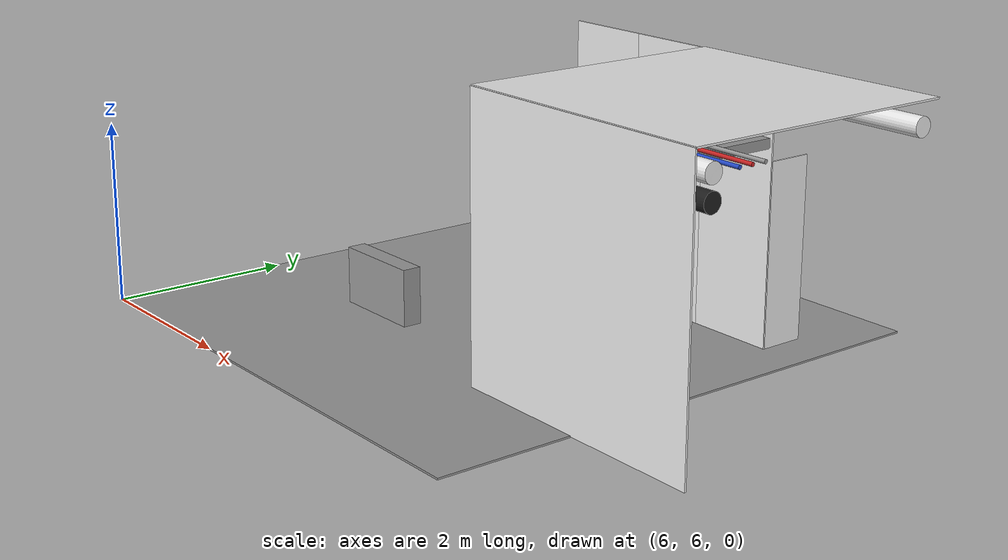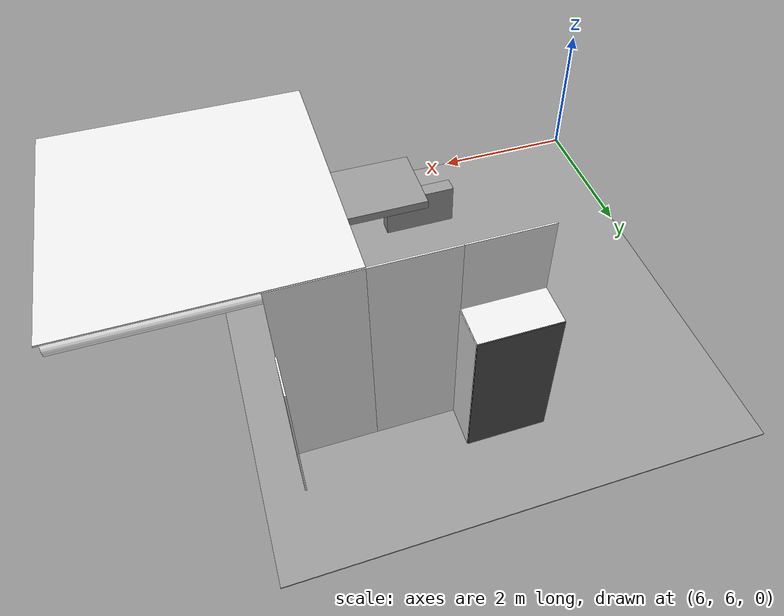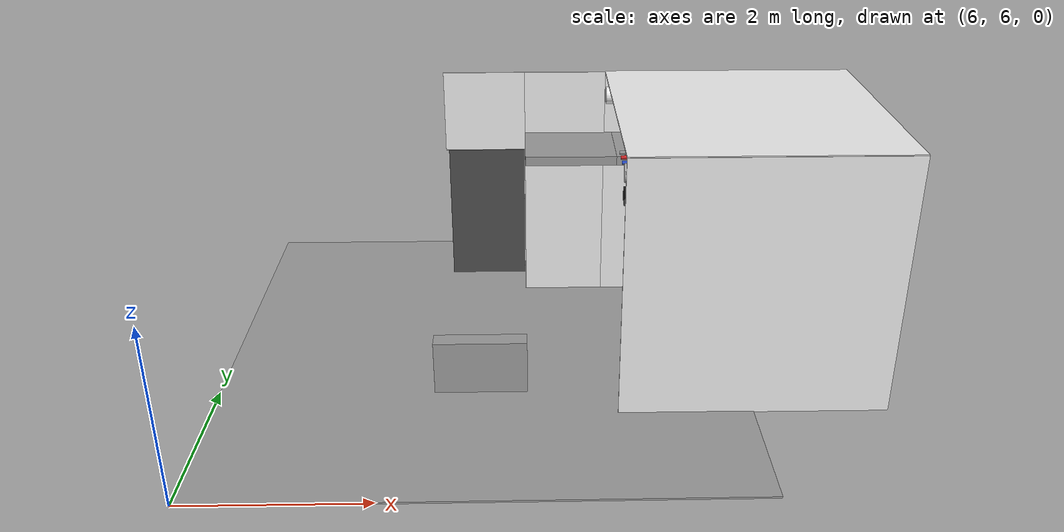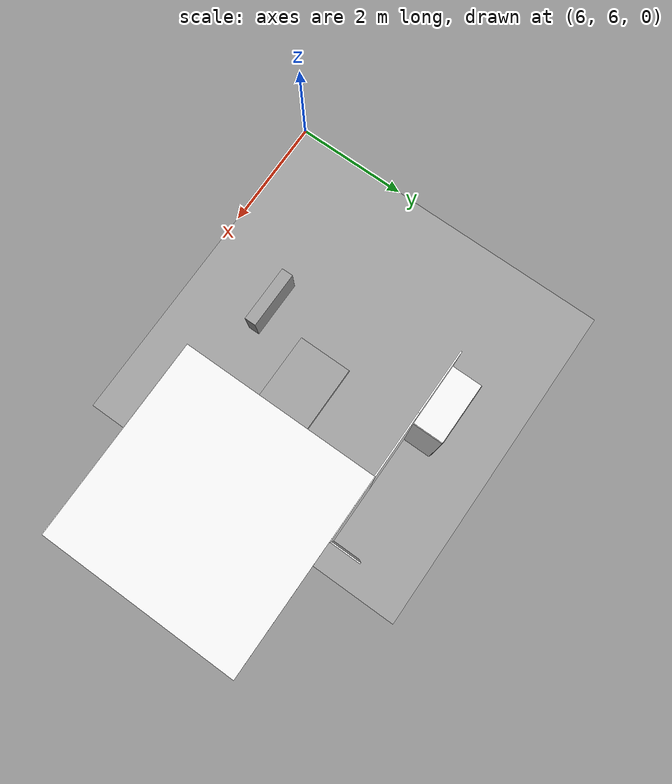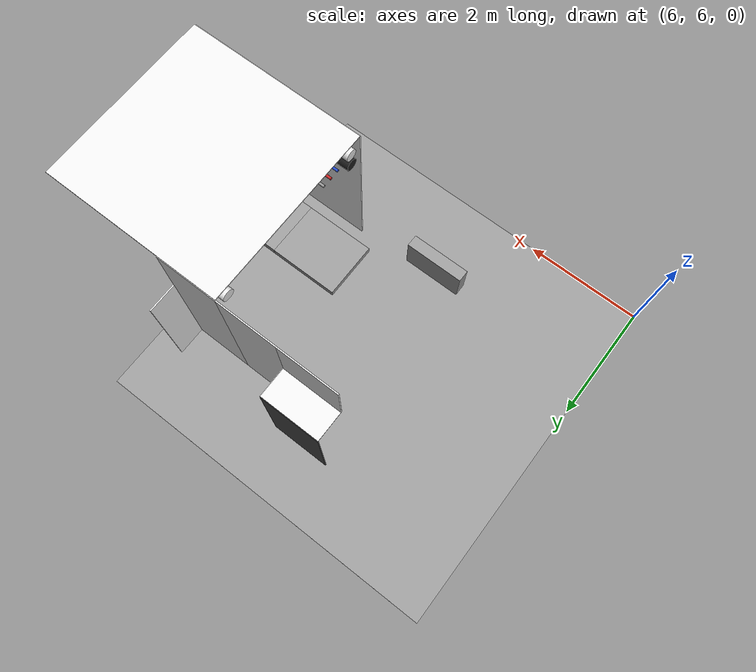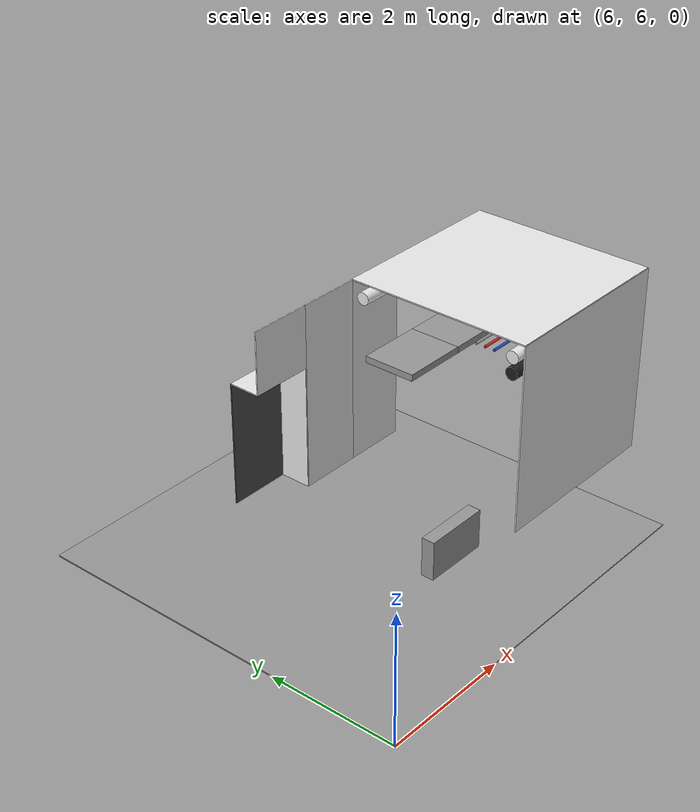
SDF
<sdf version="1.6">
 <world name="default">
  <model name="ceiling_1_3_3_2_1">
   <pose>10.0 9.0 2.55 0.0 0.0 -1.57</pose>
   <link name="link_1">
    <visual name="visual">
     <geometry><box><size>0.8 1 0.1</size></box></geometry>
     <material>
      <script><uri>file://media/materials/scripts/gazebo.material</uri><name>Gazebo/Grey</name></script>
     </material>
    </visual>
    <collision name="collision"><geometry><box><size>0.8 1 0.1</size></box></geometry></collision>
   </link>
   <static>1</static>
  </model>
  <model name="wall_bottom_3_3_0_1">
   <static>1</static>
   <pose>9.0 9.0 0.0 0.0 0.0 -1.57</pose>
   <link name="link">
    <collision name="collision"><geometry><box><size>6.0 6.0 0.02</size></box></geometry></collision>
    <visual name="visual">
     <material>
      <script><name>Gazebo/Grey</name><uri>file://media/materials/scripts/gazebo.material</uri></script>
     </material>
     <geometry><box><size>6.0 6.0 0.02</size></box></geometry>
    </visual>
   </link>
  </model>
  <model name="wall_left_front_left_3_3_0_1">
   <static>1</static>
   <pose>10.0 10.5 1.5 0.0 0.0 0.0</pose>
   <link name="link">
    <collision name="collision"><geometry><box><size>1.0 0.02 3.0</size></box></geometry></collision>
    <visual name="visual">
     <material>
      <script><name>Gazebo/White</name><uri>file://media/materials/scripts/gazebo.material</uri></script>
     </material>
     <geometry><box><size>1.0 0.02 3.0</size></box></geometry>
    </visual>
   </link>
  </model>
  <model name="wall_left_front_up_3_3_0_1">
   <static>1</static>
   <pose>9.0 10.5 2.5 0.0 0.0 0.0</pose>
   <link name="link">
    <collision name="collision"><geometry><box><size>1.0 0.02 1.0</size></box></geometry></collision>
    <visual name="visual">
     <material>
      <script><name>Gazebo/White</name><uri>file://media/materials/scripts/gazebo.material</uri></script>
     </material>
     <geometry><box><size>1.0 0.02 1.0</size></box></geometry>
    </visual>
   </link>
  </model>
  <model name="wall_left_inside_back_3_3_0_1">
   <static>1</static>
   <pose>9.0 11.0 1.0 0.0 0.0 0.0</pose>
   <link name="link">
    <collision name="collision"><geometry><box><size>1 0.02 2</size></box></geometry></collision>
    <visual name="visual">
     <material>
      <script><name>Gazebo/DarkGrey</name><uri>file://media/materials/scripts/gazebo.material</uri></script>
     </material>
     <geometry><box><size>1 0.02 2</size></box></geometry>
    </visual>
   </link>
  </model>
  <model name="wall_left_inside_left_3_3_0_1">
   <static>1</static>
   <pose>9.5 10.75 1.0 0.0 0.0 -1.57</pose>
   <link name="link">
    <collision name="collision"><geometry><box><size>0.5 0.02 2</size></box></geometry></collision>
    <visual name="visual">
     <material>
      <script><name>Gazebo/White</name><uri>file://media/materials/scripts/gazebo.material</uri></script>
     </material>
     <geometry><box><size>0.5 0.02 2</size></box></geometry>
    </visual>
   </link>
  </model>
  <model name="wall_left_inside_top_3_3_0_1">
   <static>1</static>
   <pose>9.0 10.75 2.0 1.57 0.0 0.0</pose>
   <link name="link">
    <collision name="collision"><geometry><box><size>1 0.02 0.5</size></box></geometry></collision>
    <visual name="visual">
     <material>
      <script><name>Gazebo/White</name><uri>file://media/materials/scripts/gazebo.material</uri></script>
     </material>
     <geometry><box><size>1 0.02 0.5</size></box></geometry>
    </visual>
   </link>
  </model>
  <model name="panel_3_3_0_1">
   <static>1</static>
   <pose>9.0 7.5 0.66 0.0 0.0 -1.57</pose>
   <link name="link">
    <collision name="collision"><geometry><box><size>0.2 1 0.6</size></box></geometry></collision>
    <visual name="visual">
     <material>
      <script><name>Gazebo/Grey</name><uri>file://media/materials/scripts/gazebo.material</uri></script>
     </material>
     <geometry><box><size>0.2 1 0.6</size></box></geometry>
    </visual>
   </link>
  </model>
  <model name="wall_right_4_3_0_1">
   <static>1</static>
   <pose>12.0 7.5 1.5 0.0 0.0 0.0</pose>
   <link name="link">
    <collision name="collision"><geometry><box><size>3.0 0.02 3.0</size></box></geometry></collision>
    <visual name="visual">
     <material>
      <script><name>Gazebo/White</name><uri>file://media/materials/scripts/gazebo.material</uri></script>
     </material>
     <geometry><box><size>3.0 0.02 3.0</size></box></geometry>
    </visual>
   </link>
  </model>
  <model name="wall_top_4_3_0_1">
   <static>1</static>
   <pose>12.0 9.0 3.0 1.57 0.0 -1.57</pose>
   <link name="link">
    <collision name="collision"><geometry><box><size>3.0 0.02 3.0</size></box></geometry></collision>
    <visual name="visual">
     <material>
      <script><name>Gazebo/White</name><uri>file://media/materials/scripts/gazebo.material</uri></script>
     </material>
     <geometry><box><size>3.0 0.02 3.0</size></box></geometry>
    </visual>
   </link>
  </model>
  <model name="ceiling_1_4_3_0_1">
   <pose>12.0 9.0 2.55 0.0 0.0 -1.57</pose>
   <link name="link_1">
    <visual name="visual">
     <geometry><box><size>0.8 1 0.1</size></box></geometry>
     <material>
      <script><uri>file://media/materials/scripts/gazebo.material</uri><name>Gazebo/Grey</name></script>
     </material>
    </visual>
    <collision name="collision"><geometry><box><size>0.8 1 0.1</size></box></geometry></collision>
   </link>
   <static>1</static>
  </model>
  <model name="ceiling_1_4_3_1_1">
   <pose>11.0 9.0 2.55 0.0 0.0 -1.57</pose>
   <link name="link_1">
    <visual name="visual">
     <geometry><box><size>0.8 1 0.1</size></box></geometry>
     <material>
      <script><uri>file://media/materials/scripts/gazebo.material</uri><name>Gazebo/Grey</name></script>
     </material>
    </visual>
    <collision name="collision"><geometry><box><size>0.8 1 0.1</size></box></geometry></collision>
   </link>
   <static>1</static>
  </model>
  <model name="white_pipe_left_4_3_0_1">
   <static>1</static>
   <pose>12.0 9.0 2.76 0.0 0.0 -1.57</pose>
   <link name="link_0">
    <visual name="visual">
     <pose>-1.3 0 0 1.57 0 0</pose>
     <geometry><cylinder><radius>0.1</radius><length>3.0</length></cylinder></geometry>
     <material>
      <script><uri>file://media/materials/scripts/gazebo.material</uri><name>Gazebo/White</name></script>
     </material>
    </visual>
    <collision name="collision">
     <pose>-1.3 0 0 1.57 0 0</pose>
     <geometry><cylinder><radius>0.1</radius><length>3.0</length></cylinder></geometry>
    </collision>
   </link>
  </model>
  <model name="white_pipe_right_4_3_0_1">
   <static>1</static>
   <pose>12.0 9.0 2.76 0.0 0.0 -1.57</pose>
   <link name="link_0">
    <visual name="visual">
     <pose>1.3 0 0 1.57 0 0</pose>
     <geometry><cylinder><radius>0.1</radius><length>3.0</length></cylinder></geometry>
     <material>
      <script><uri>file://media/materials/scripts/gazebo.material</uri><name>Gazebo/White</name></script>
     </material>
    </visual>
    <collision name="collision">
     <pose>1.3 0 0 1.57 0 0</pose>
     <geometry><cylinder><radius>0.1</radius><length>3.0</length></cylinder></geometry>
    </collision>
   </link>
  </model>
  <model name="black_pipe_right_4_3_0_1">
   <static>1</static>
   <pose>12.0 9.0 2.76 0.0 0.0 -1.57</pose>
   <link name="link_0">
    <visual name="visual">
     <pose>1.3 0 -0.25 1.57 0 0</pose>
     <geometry><cylinder><radius>0.1</radius><length>3.0</length></cylinder></geometry>
     <material>
      <script><uri>file://media/materials/scripts/gazebo.material</uri><name>Gazebo/Black</name></script>
     </material>
    </visual>
    <collision name="collision">
     <pose>1.3 0 -0.25 1.57 0 0</pose>
     <geometry><cylinder><radius>0.1</radius><length>3.0</length></cylinder></geometry>
    </collision>
   </link>
  </model>
  <model name="grey_pipe_right_4_3_0_1">
   <static>1</static>
   <pose>12.0 9.0 2.76 0.0 0.0 -1.57</pose>
   <link name="link_0">
    <visual name="visual">
     <pose>0.7 0 0 1.57 0 0</pose>
     <geometry><cylinder><radius>0.02</radius><length>3.0</length></cylinder></geometry>
     <material>
      <script><uri>file://media/materials/scripts/gazebo.material</uri><name>Gazebo/Grey</name></script>
     </material>
    </visual>
    <collision name="collision">
     <pose>0.7 0 0 1.57 0 0</pose>
     <geometry><cylinder><radius>0.02</radius><length>3.0</length></cylinder></geometry>
    </collision>
   </link>
  </model>
  <model name="red_pipe_right_4_3_0_1">
   <static>1</static>
   <pose>12.0 9.0 2.76 0.0 0.0 -1.57</pose>
   <link name="link_0">
    <visual name="visual">
     <pose>0.85 0 0 1.57 0 0</pose>
     <geometry><cylinder><radius>0.02</radius><length>3.0</length></cylinder></geometry>
     <material>
      <script><uri>file://media/materials/scripts/gazebo.material</uri><name>Gazebo/Red</name></script>
     </material>
    </visual>
    <collision name="collision">
     <pose>0.85 0 0 1.57 0 0</pose>
     <geometry><cylinder><radius>0.02</radius><length>3.0</length></cylinder></geometry>
    </collision>
   </link>
  </model>
  <model name="blue_pipe_right_4_3_0_1">
   <static>1</static>
   <pose>12.0 9.0 2.76 0.0 0.0 -1.57</pose>
   <link name="link_0">
    <visual name="visual">
     <pose>1 0 0 1.57 0 0</pose>
     <geometry><cylinder><radius>0.02</radius><length>3.0</length></cylinder></geometry>
     <material>
      <script><uri>file://media/materials/scripts/gazebo.material</uri><name>Gazebo/Blue</name></script>
     </material>
    </visual>
    <collision name="collision">
     <pose>1 0 0 1.57 0 0</pose>
     <geometry><cylinder><radius>0.02</radius><length>3.0</length></cylinder></geometry>
    </collision>
   </link>
  </model>
  <model name="wall_left_front_right_4_3_0_1">
   <static>1</static>
   <pose>11.0 10.5 1.5 0.0 0.0 0.0</pose>
   <link name="link">
    <collision name="collision"><geometry><box><size>1.0 0.02 3.0</size></box></geometry></collision>
    <visual name="visual">
     <material>
      <script><name>Gazebo/White</name><uri>file://media/materials/scripts/gazebo.material</uri></script>
     </material>
     <geometry><box><size>1.0 0.02 3.0</size></box></geometry>
    </visual>
   </link>
  </model>
  <model name="wall_left_inside_right_4_3_0_1">
   <static>1</static>
   <pose>11.5 10.75 1.0 0.0 0.0 -1.57</pose>
   <link name="link">
    <collision name="collision"><geometry><box><size>0.5 0.02 2</size></box></geometry></collision>
    <visual name="visual">
     <material>
      <script><name>Gazebo/White</name><uri>file://media/materials/scripts/gazebo.material</uri></script>
     </material>
     <geometry><box><size>0.5 0.02 2</size></box></geometry>
    </visual>
   </link>
  </model>
 </world>
</sdf>
